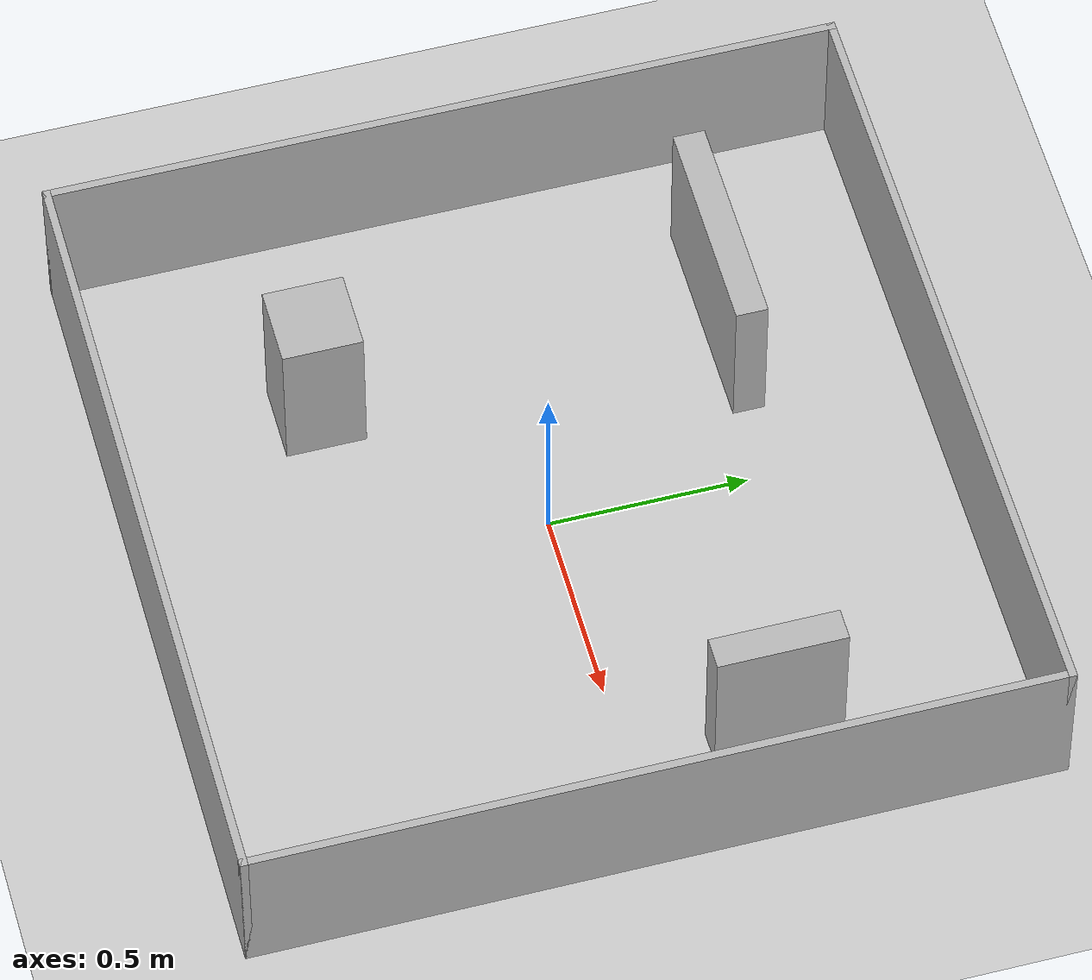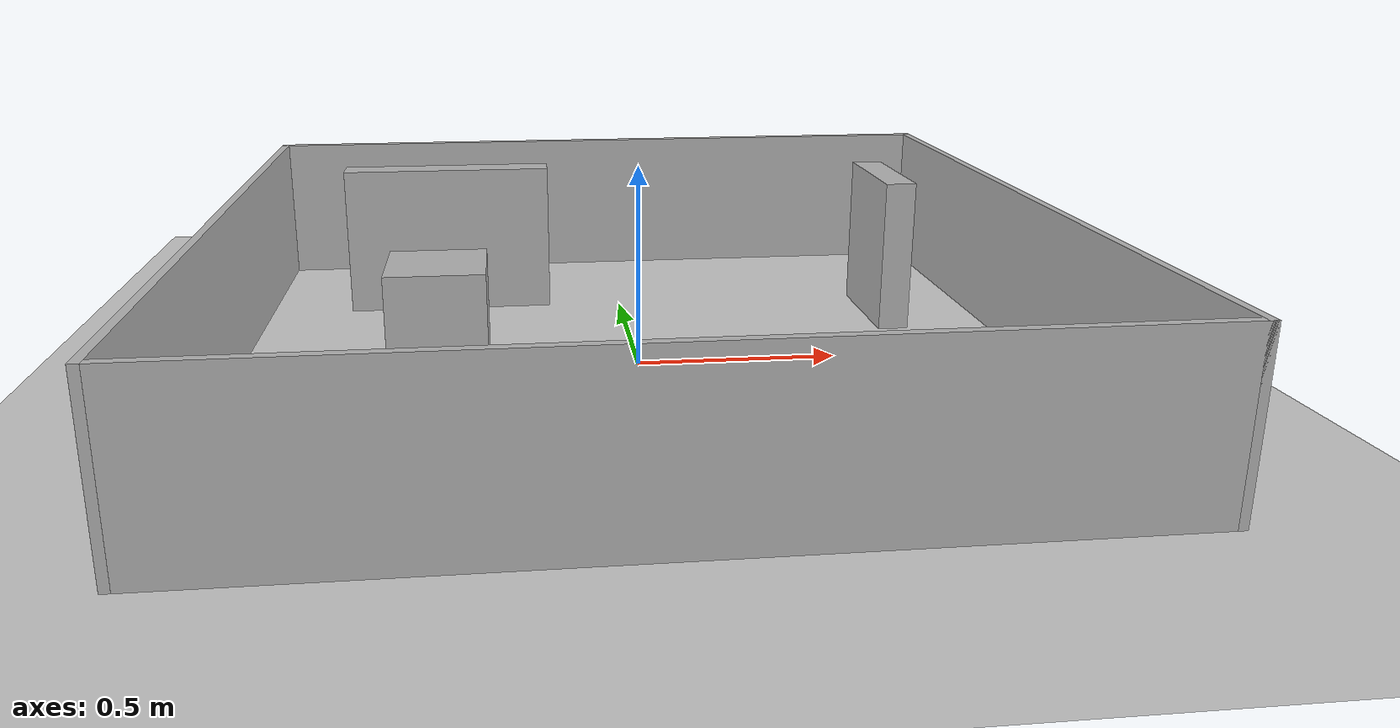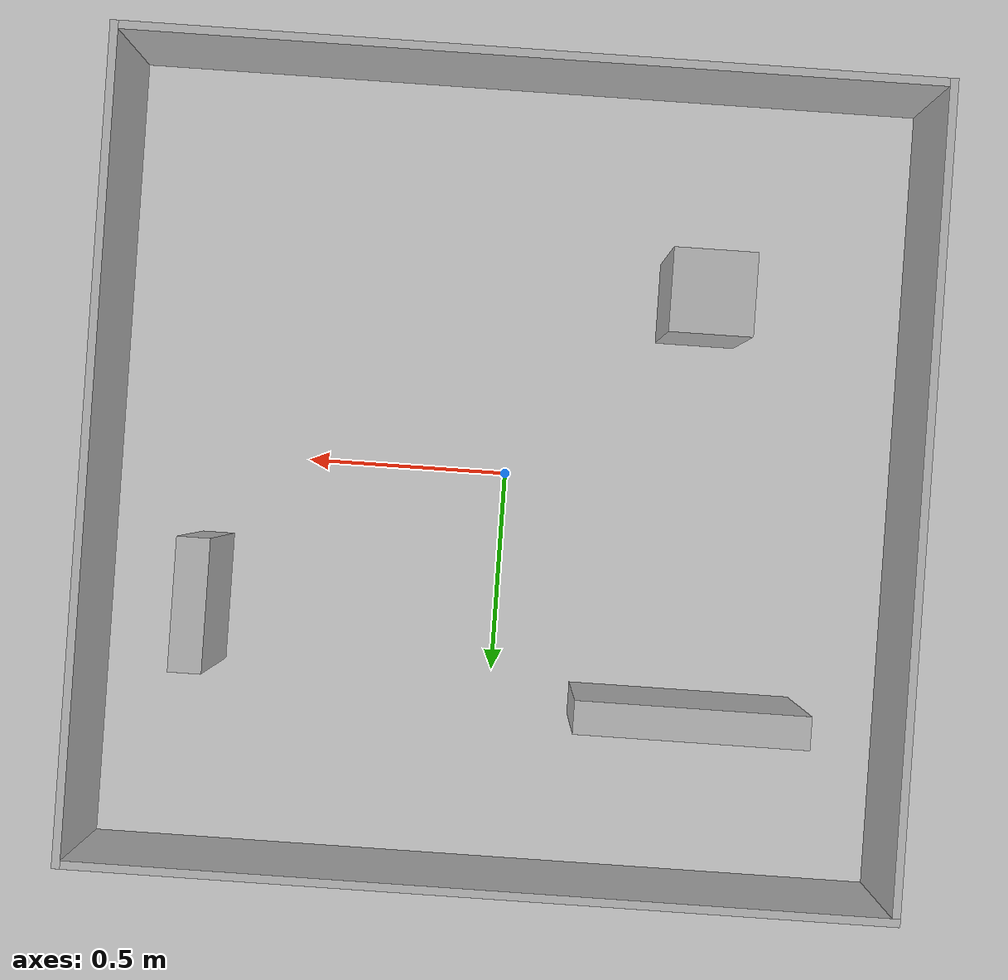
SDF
<?xml version="1.0"?>
<sdf version="1.5">
    <world name="one_robot">
        <physics type="bullet">
            <max_step_size>0.001</max_step_size>
            <real_time_factor>1</real_time_factor>
            <real_time_update_rate>1000</real_time_update_rate>
        </physics>
        <include>
            <uri>model://ground_plane</uri>
        </include>
        <include>
            <uri>model://sun</uri>
        </include>

        <!-- Create some walls -->
        <model name="outer_walls">
            <pose>0 0 0.2 0 0 0</pose>
            <static>true</static>
            <link name="xplus">
                <pose>0.99 0 0 0 0 0</pose>
                <visual name="visual">
                    <geometry>
                        <box>
                            <size>0.02 2 0.4</size>
                        </box>
                    </geometry>
                </visual>
                <collision name="collision">
                    <geometry>
                        <box>
                            <size>0.02 2 0.4</size>
                        </box>
                    </geometry>
                </collision>
            </link>
            <link name="yplus">
                <pose>0 0.99 0 0 0 0</pose>
                <visual name="visual">
                    <geometry>
                        <box>
                            <size>2 0.02 0.4</size>
                        </box>
                    </geometry>
                </visual>
                <collision name="collision">
                    <geometry>
                        <box>
                            <size>2 0.02 0.4</size>
                        </box>
                    </geometry>
                </collision>
            </link>
            <link name="xminus">
                <pose>-0.99 0 0 0 0 0</pose>
                <visual name="visual">
                    <geometry>
                        <box>
                            <size>0.02 2 0.4</size>
                        </box>
                    </geometry>
                </visual>
                <collision name="collision">
                    <geometry>
                        <box>
                            <size>0.02 2 0.4</size>
                        </box>
                    </geometry>
                </collision>
            </link>
            <link name="yminus">
                <pose>0 -0.99 0 0 0 0</pose>
                <visual name="visual">
                    <geometry>
                        <box>
                            <size>2 0.02 0.4</size>
                        </box>
                    </geometry>
                </visual>
                <collision name="collision">
                    <geometry>
                        <box>
                            <size>2 0.02 0.4</size>
                        </box>
                    </geometry>
                </collision>
            </link>
        </model>
        <model name="inner walls">
            <pose>0 0 0.2 0 0 0</pose>
            <static>true</static>
            <link name="bot_left">
                <pose>-0.48 0.56 0 0 0 0</pose>
                <visual name="visual">
                    <geometry>
                        <box>
                            <size>0.56 0.08 0.4</size>
                        </box>
                    </geometry>
                </visual>
                <collision name="collision">
                    <geometry>
                        <box>
                            <size>0.56 0.08 0.4</size>
                        </box>
                    </geometry>
                </collision>
            </link>
            <link name="top_left">
                <pose>0.72 0.36 0 0 0 0</pose>
                <visual name="visual">
                    <geometry>
                        <box>
                            <size>0.08 0.32 0.4</size>
                        </box>
                    </geometry>
                </visual>
                <collision name="collision">
                    <geometry>
                        <box>
                            <size>0.08 0.32 0.4</size>
                        </box>
                    </geometry>
                </collision>
            </link>
            <link name="bot_right">
                <pose>-0.46 -0.46 0 0 0 0</pose>
                <visual name="visual">
                    <geometry>
                        <box>
                            <size>0.2 0.2 0.4</size>
                        </box>
                    </geometry>
                </visual>
                <collision name="collision">
                    <geometry>
                        <box>
                            <size>0.2 0.2 0.4</size>
                        </box>
                    </geometry>
                </collision>
            </link>
        </model>
    </world>
</sdf>
